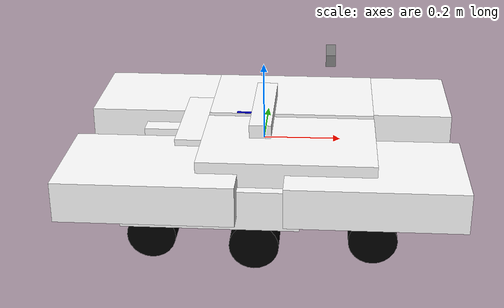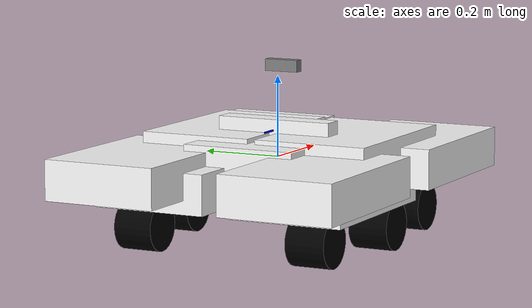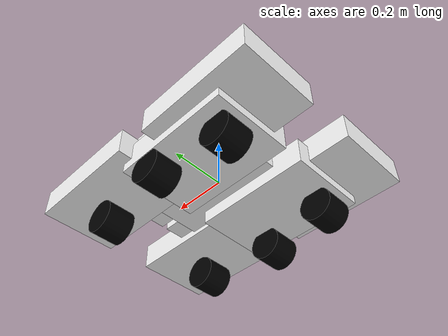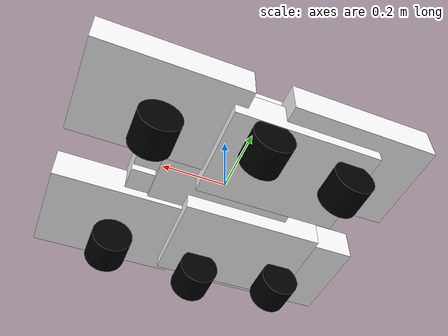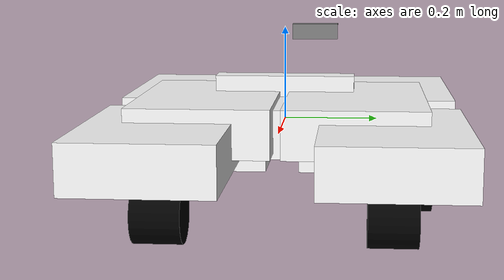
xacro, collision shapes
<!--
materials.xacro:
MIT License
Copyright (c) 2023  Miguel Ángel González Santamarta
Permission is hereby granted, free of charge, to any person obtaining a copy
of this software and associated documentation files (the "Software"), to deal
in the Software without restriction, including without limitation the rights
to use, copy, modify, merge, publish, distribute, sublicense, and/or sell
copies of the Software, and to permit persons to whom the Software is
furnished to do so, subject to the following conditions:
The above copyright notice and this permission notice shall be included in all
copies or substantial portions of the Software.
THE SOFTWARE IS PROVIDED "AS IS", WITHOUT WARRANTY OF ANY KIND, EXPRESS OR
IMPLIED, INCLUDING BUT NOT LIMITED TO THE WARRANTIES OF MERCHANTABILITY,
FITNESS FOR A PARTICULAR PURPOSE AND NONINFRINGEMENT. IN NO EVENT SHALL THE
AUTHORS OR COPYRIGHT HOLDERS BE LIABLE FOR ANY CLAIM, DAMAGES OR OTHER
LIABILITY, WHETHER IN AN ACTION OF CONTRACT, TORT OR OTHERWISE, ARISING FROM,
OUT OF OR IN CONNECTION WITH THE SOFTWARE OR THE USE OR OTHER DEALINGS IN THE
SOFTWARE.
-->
<?xml version="1.0" ?>
<robot name="rover"
    xmlns:xacro="http://www.ros.org/wiki/xacro">
    <!-- Include macros -->
    <xacro:include filename="$(find rover_description)/urdf/materials.xacro"/>
    <xacro:include filename="$(find rover_description)/urdf/inertials.xacro"/>
    <xacro:include filename="$(find rover_description)/urdf/bases/body.urdf.xacro" />
    <xacro:include filename="$(find rover_description)/urdf/bases/differential.urdf.xacro" />
    <xacro:include filename="$(find rover_description)/urdf/bases/turnbuckle.urdf.xacro" />
    <xacro:include filename="$(find rover_description)/urdf/bases/rocker.urdf.xacro" />
    <xacro:include filename="$(find rover_description)/urdf/bases/bogie.urdf.xacro" />
    <xacro:include filename="$(find rover_description)/urdf/wheels/wheel.urdf.xacro" />
    <xacro:include filename="$(find rover_description)/urdf/wheels/corner.urdf.xacro" />
    <xacro:include filename="$(find rover_description)/urdf/sensors/all_sensors.urdf.xacro" />
    <!-- Gazebo ROS2 Control -->
    <gazebo>
        <plugin filename="libgazebo_ros2_control.so" name="gazebo_ros2_control">
            <parameters>$(find rover_description)/config/control.yaml</parameters>
        </plugin>
    </gazebo>
    <!-- Ground Truth Odometry Publisher (absolute world coordinates) -->
    <gazebo>
        <plugin name="p3d_base_controller" filename="libgazebo_ros_p3d.so">
            <ros>
                <namespace>/</namespace>
                <remapping>odom:=odom_ground_truth_absolute</remapping>
            </ros>
            <update_rate>50.0</update_rate>
            <body_name>base_link</body_name>
            <frame_name>world</frame_name>
            <gaussian_noise>0.0</gaussian_noise>
        </plugin>
    </gazebo>
    <!-- Joint State Publisher for passive joints -->
    <gazebo>
        <plugin name="rover_joint_state" filename="libgazebo_ros_joint_state_publisher.so">
            <update_rate>30</update_rate>
            <joint_name>left_rocker_joint</joint_name>
            <joint_name>right_rocker_joint</joint_name>
            <joint_name>left_bogie_joint</joint_name>
            <joint_name>right_bogie_joint</joint_name>
            <joint_name>diff_brace_joint</joint_name>
            <joint_name>back_left_turnbuckle_joint</joint_name>
            <joint_name>back_right_turnbuckle_joint</joint_name>
            <joint_name>front_left_turnbuckle_joint</joint_name>
            <joint_name>front_right_turnbuckle_joint</joint_name>
            <joint_name>front_left_corner_joint</joint_name>
            <joint_name>front_right_corner_joint</joint_name>
            <joint_name>back_left_corner_joint</joint_name>
            <joint_name>back_right_corner_joint</joint_name>
        </plugin>
    </gazebo>
    <ros2_control name="GazeboSystem" type="system">
        <hardware>
            <plugin>gazebo_ros2_control/GazeboSystem</plugin>
        </hardware>
        <joint name="front_right_corner_joint">
            <command_interface name="position">
                <param name="min">-3.14159</param>
                <param name="max">3.14159</param>
            </command_interface>
            <state_interface name="position">
                <param name="initial_value">0.0</param>
            </state_interface>
            <state_interface name="velocity"/>
            <state_interface name="effort"/>
        </joint>
        <joint name="front_left_corner_joint">
            <command_interface name="position">
                <param name="min">-3.14159</param>
                <param name="max">3.14159</param>
            </command_interface>
            <state_interface name="position">
                <param name="initial_value">0.0</param>
            </state_interface>
            <state_interface name="velocity"/>
            <state_interface name="effort"/>
        </joint>
        <joint name="back_right_corner_joint">
            <command_interface name="position">
                <param name="min">-3.14159</param>
                <param name="max">3.14159</param>
            </command_interface>
            <state_interface name="position">
                <param name="initial_value">0.0</param>
            </state_interface>
            <state_interface name="velocity"/>
            <state_interface name="effort"/>
        </joint>
        <joint name="back_left_corner_joint">
            <command_interface name="position">
                <param name="min">-3.14159</param>
                <param name="max">3.14159</param>
            </command_interface>
            <state_interface name="position">
                <param name="initial_value">0.0</param>
            </state_interface>
            <state_interface name="velocity"/>
            <state_interface name="effort"/>
        </joint>
        <joint name="front_right_wheel_joint">
            <command_interface name="velocity">
                <param name="min">-10</param>
                <param name="max">10</param>
            </command_interface>
            <state_interface name="position"/>
            <state_interface name="velocity"/>
            <state_interface name="effort"/>
        </joint>
        <joint name="front_left_wheel_joint">
            <command_interface name="velocity">
                <param name="min">-10</param>
                <param name="max">10</param>
            </command_interface>
            <state_interface name="position"/>
            <state_interface name="velocity"/>
            <state_interface name="effort"/>
        </joint>
        <joint name="mid_right_wheel_joint">
            <command_interface name="velocity">
                <param name="min">-10</param>
                <param name="max">10</param>
            </command_interface>
            <state_interface name="position"/>
            <state_interface name="velocity"/>
            <state_interface name="effort"/>
        </joint>
        <joint name="mid_left_wheel_joint">
            <command_interface name="velocity">
                <param name="min">-10</param>
                <param name="max">10</param>
            </command_interface>
            <state_interface name="position"/>
            <state_interface name="velocity"/>
            <state_interface name="effort"/>
        </joint>
        <joint name="back_right_wheel_joint">
            <command_interface name="velocity">
                <param name="min">-10</param>
                <param name="max">10</param>
            </command_interface>
            <state_interface name="position"/>
            <state_interface name="velocity"/>
            <state_interface name="effort"/>
        </joint>
        <joint name="back_left_wheel_joint">
            <command_interface name="velocity">
                <param name="min">-10</param>
                <param name="max">10</param>
            </command_interface>
            <state_interface name="position"/>
            <state_interface name="velocity"/>
            <state_interface name="effort"/>
        </joint>
    </ros2_control>
    <!-- The base link -->
    <link name="base_link">
        <visual>
            <origin rpy="0 0 0" xyz="0 0 0" />
            <geometry>
                <box size="0.01 0.01 0.01"/>
            </geometry>
            <material name="orange" />
        </visual>
    </link>
    <gazebo reference="base_link">
        <material>Gazebo/Orange</material>
    </gazebo>
    <!-- body -->
    <xacro:body parent="base_link" />
    <xacro:differential parent="base_link" />
    <xacro:turnbuckle lat_label="left" reflect="1"/>
    <xacro:turnbuckle lat_label="right" reflect="-1"/>
    <xacro:rocker parent="base_link" lat_label="left" reflect="1"/>
    <xacro:rocker parent="base_link" lat_label="right" reflect="-1"/>
    <xacro:bogie lat_label="left" reflect="1"/>
    <xacro:bogie lat_label="right" reflect="-1"/>
    <!-- sensors -->

    <!-- Slamtec RPLIDAR C1: full 360 deg scan, 0.05-12 m -->
    <xacro:sensor_rplidar_c1 prefix="laser" parent="base_link">
        <origin xyz="0.17 -0.047 0.033" rpy="0 0 3.14159265"/>
    </xacro:sensor_rplidar_c1>

    <!-- Adafruit BNO085 9-DOF IMU -->
    <xacro:sensor_bno085 prefix="imu" parent="base_link">
        <origin xyz="-0.17 0 0" rpy="0 0 -1.5708"/>
    </xacro:sensor_bno085>

    <!-- Orbbec Gemini 335 RGB-D camera -->
    <xacro:sensor_gemini_335 prefix="camera" parent="base_link">
        <origin xyz="0.17 0.047 0.205" rpy="0 0 0"/>
    </xacro:sensor_gemini_335>
    <!-- wheels -->
    <xacro:corner_link lon_label="front" lat_label="left" reflect="1"/>
    <xacro:corner_link lon_label="front" lat_label="right" reflect="-1"/>
    <xacro:front_corner_joint lat_label="left" reflect="1"/>
    <xacro:front_corner_joint lat_label="right" reflect="-1"/>
    <xacro:corner_link lon_label="back" lat_label="left" reflect="1"/>
    <xacro:corner_link lon_label="back" lat_label="right" reflect="-1"/>
    <xacro:back_corner_joint lat_label="left" reflect="1"/>
    <xacro:back_corner_joint lat_label="right" reflect="-1"/>
    <xacro:wheel_link lon_label="front" lat_label="left" reflect="1"/>
    <xacro:wheel_link lon_label="front" lat_label="right" reflect="-1"/>
    <xacro:corner_wheel_joint lon_label="front" lat_label="left" reflect="1"/>
    <xacro:corner_wheel_joint lon_label="front" lat_label="right" reflect="-1"/>
    <xacro:wheel_link lon_label="mid" lat_label="left" reflect="1"/>
    <xacro:wheel_link lon_label="mid" lat_label="right" reflect="-1"/>
    <xacro:mid_wheel_joint lat_label="left" reflect="1"/>
    <xacro:mid_wheel_joint lat_label="right" reflect="-1"/>
    <xacro:wheel_link lon_label="back" lat_label="left" reflect="1"/>
    <xacro:wheel_link lon_label="back" lat_label="right" reflect="-1"/>
    <xacro:corner_wheel_joint lon_label="back" lat_label="left" reflect="1"/>
    <xacro:corner_wheel_joint lon_label="back" lat_label="right" reflect="-1"/>
</robot>

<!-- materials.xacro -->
<robot name="materials"
    xmlns:xacro="http://www.ros.org/wiki/xacro">
    <material name="red">
        <color rgba="0.8 0 0 1"/>
    </material>
    <material name="green">
        <color rgba="0 0.8 0 1"/>
    </material>
    <material name="blue">
        <color rgba="0 0 0.8 1"/>
    </material>
    <material name="orange">
        <color rgba="0.8 0.25 0 1"/>
    </material>
    <material name="black">
        <color rgba="0 0 0 1"/>
    </material>
    <material name="dark_gray">
        <color rgba="0.5 0.5 0.5 1"/>
    </material>
    <material name="gray">
        <color rgba="0.753 0.753 0.753 1"/>
    </material>
    <material name="silver">
        <color rgba="0.88 0.88 0.88 1"/>
    </material>
    <material name="white">
        <color rgba="1 1 1 1"/>
    </material>
</robot>

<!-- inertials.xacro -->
<robot name="inertials"
    xmlns:xacro="http://www.ros.org/wiki/xacro">
    <!-- Math constants -->
    <xacro:property name="math_pi" value="3.141592653589793" />
    <xacro:property name="math_pi_over_2" value="1.5707963267948966" />
    <xacro:property name="math_pi_over_4" value="0.785398163397448" />
    <!-- Inertial for solid cuboid with dimensions x y z  -->
    <xacro:macro name="solid_cuboid_inertial" params="rpy xyz mass x y z">
        <inertial>
            <origin rpy="${rpy}" xyz="${xyz}"/>
            <mass value="${mass}" />
            <inertia ixx="${mass * (y * y + z * z) / 12.0}" ixy="0.0" ixz="0.0" iyy="${mass * (x * x + z * z) / 12.0}" iyz="0.0" izz="${mass * (x * x + y * y) / 12.0}" />
        </inertial>
    </xacro:macro>
    <!-- Inertial for solid cylinder with radius and length aligned to z-axis  -->
    <xacro:macro name="solid_cylinder_inertial" params="rpy xyz mass radius length">
        <inertial>
            <origin rpy="${rpy}" xyz="${xyz}"/>
            <mass value="${mass}" />
            <inertia ixx="${mass * (3.0 * radius * radius + length * length) / 12.0}" ixy="0.0" ixz="0.0" iyy="${mass * (3.0 * radius * radius + length * length) / 12.0}" iyz="0.0" izz="${mass * (radius * radius) / 2.0}" />
        </inertial>
    </xacro:macro>
</robot>

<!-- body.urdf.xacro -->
<robot xmlns:xacro="http://www.ros.org/wiki/xacro">
    <xacro:property name="body_box_length" value="0.43" />
    <xacro:property name="body_box_width" value="0.29" />
    <xacro:property name="body_box_depth" value="0.10" />
    <xacro:property name="body_box_mass" value="1.0" />

    <xacro:include filename="$(find rover_description)/urdf/inertials.xacro"/>

    <xacro:macro name="body" params="parent">

        <link name="body_box_link">
            <visual>
                <origin rpy="0 0 0" xyz="0 0 0" />
                <geometry>
                    <mesh filename="package://rover_description/meshes/bases/body_box.stl" />
                </geometry>
                <material name="white" />
            </visual>
            <collision>
                <origin rpy="0 0 0" xyz="0 0 0" />
                <geometry>
                    <box size="${body_box_length} ${body_box_width} ${body_box_depth}"/>
                </geometry>
            </collision>
            <xacro:solid_cuboid_inertial rpy="0 0 0" xyz="0 0 0" mass="${body_box_mass}" x="${body_box_length}" y="${body_box_width}" z="${body_box_depth}" />
        </link>

        <gazebo reference="body_box_link">
            <material>Gazebo/White</material>
        </gazebo>

        <joint name="body_box_joint" type="fixed">
            <origin rpy="0 0 0" xyz="0 0 0"/>
            <parent link="${parent}" />
            <child link="body_box_link" />
        </joint>

    </xacro:macro>
</robot>

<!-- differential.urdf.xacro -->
<robot xmlns:xacro="http://www.ros.org/wiki/xacro">
    <xacro:property name="differential_box_length" value="0.300" />
    <xacro:property name="differential_box_width" value="0.055" />
    <xacro:property name="differential_box_depth" value="0.055" />
    <xacro:property name="differential_box_mass" value="0.1" />

    <xacro:include filename="$(find rover_description)/urdf/inertials.xacro"/>

    <xacro:macro name="differential" params="parent">

        <link name="diff_brace_link">
            <visual>
                <origin rpy="0 0 0" xyz="0 0 0" />
                <geometry>
                    <mesh filename="package://rover_description/meshes/bases/differential.stl" />
                </geometry>
                <material name="white" />
            </visual>
            <collision>
                <origin rpy="0 0 ${math_pi_over_2}" xyz="0 0 0" />
                <geometry>
                    <box size="${differential_box_length} ${differential_box_width} ${differential_box_depth}"/>
                </geometry>
            </collision>
            <xacro:solid_cuboid_inertial rpy="0 0 ${math_pi_over_2}" xyz="0 0 0" mass="${differential_box_mass}" x="${differential_box_length}" y="${differential_box_width}" z="${differential_box_depth}" />
        </link>

        <gazebo reference="diff_brace_link">
            <material>Gazebo/White</material>
        </gazebo>

        <joint name="diff_brace_joint" type="revolute">
            <origin rpy="0 0 0" xyz="0 0 0.0681"/>
            <axis xyz="0 0 1" />
            <limit lower="${-math_pi_over_4}" upper="${math_pi_over_4}" effort="100.0" velocity="30.0" />
            <parent link="${parent}" />
            <child link="diff_brace_link" />
        </joint>
    </xacro:macro>
</robot>

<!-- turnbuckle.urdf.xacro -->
<robot xmlns:xacro="http://www.ros.org/wiki/xacro">

    <xacro:include filename="$(find rover_description)/urdf/inertials.xacro"/>

    <xacro:macro name="turnbuckle" params="lat_label reflect">
        <link name="${lat_label}_turnbuckle_link">
            <origin xyz="0.035 ${reflect * 0.17} 0.07" rpy="0 0 0"/>
            <visual>
                <origin rpy="0 0 0" xyz="0 0 0" />
                <geometry>
                    <mesh filename="package://rover_description/meshes/bases/turnbuckle.stl" />
                </geometry>
                <material name="blue" />
            </visual>
            <collision>
                <origin xyz="0 0 0" rpy="0 ${math_pi_over_2} 0"/>
                <geometry>
                    <cylinder length="0.07" radius="0.0025"/>
                </geometry>
            </collision>
            <xacro:solid_cylinder_inertial rpy="0 0 0" xyz="0 0 0" mass="0.25" radius="0.0025" length="0.07" />
        </link>

        <joint name="back_${lat_label}_turnbuckle_joint" type="revolute">
            <origin xyz="-0.035 0 0" rpy="0 0 0"/>
            <limit lower="${-math_pi}" upper="${math_pi}" effort="100.0" velocity="30.0" />
            <parent link="diff_brace_link" />
            <child link="${lat_label}_turnbuckle_link" />
        </joint>

    </xacro:macro>
</robot>

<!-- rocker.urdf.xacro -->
<robot xmlns:xacro="http://www.ros.org/wiki/xacro">
    <xacro:property name="rocker_box_length" value="0.43" />
    <xacro:property name="rocker_box_width" value="0.29" />
    <xacro:property name="rocker_box_depth" value="0.10" />
    <xacro:property name="rocker_box_mass" value="0.25" />

    <xacro:include filename="$(find rover_description)/urdf/inertials.xacro"/>

    <xacro:macro name="rocker" params="parent lat_label reflect">

        <!-- link -->
        <link name="${lat_label}_rocker_link">
            <visual>
                <origin rpy="0 0 0" xyz="0 0 0" />
                <geometry>
                    <mesh filename="package://rover_description/meshes/bases/${lat_label}_rocker_asm.stl" />
                </geometry>
                <material name="white" />
            </visual>
            <collision>
                <origin rpy="0 0 0" xyz="0 0 0" />
                <geometry>
                    <box size="${rocker_box_length} ${rocker_box_width} ${rocker_box_depth}"/>
                </geometry>
            </collision>
            <xacro:solid_cuboid_inertial rpy="0 0 0" xyz="0 0 0" mass="${rocker_box_mass}" x="${rocker_box_length}" y="${rocker_box_width}" z="${rocker_box_depth}" />
        </link>

        <gazebo reference="${lat_label}_rocker_link">
            <material>Gazebo/White</material>
        </gazebo>

        <!-- joint -->
        <joint name="${lat_label}_rocker_joint" type="fixed">            <!-- continuous -->
            <origin rpy="0 0 0" xyz="0.071 ${reflect * 0.155} 0.0118"/>
            <axis xyz="0 1 0" />
            <limit lower="${-math_pi_over_4}" upper="${math_pi_over_4}" effort="100.0" velocity="30.0" />
            <parent link="${parent}" />
            <child link="${lat_label}_rocker_link" />
        </joint>

        <gazebo reference="${lat_label}_rocker_joint">
            <provideFeedback>true</provideFeedback>
            <implicitSpringDamper>true</implicitSpringDamper>
        </gazebo>
    </xacro:macro>
</robot>

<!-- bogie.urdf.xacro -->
<robot xmlns:xacro="http://www.ros.org/wiki/xacro">
    <xacro:property name="bogie_box_length" value="0.43" />
    <xacro:property name="bogie_box_width" value="0.29" />
    <xacro:property name="bogie_box_depth" value="0.10" />
    <xacro:property name="bogie_box_mass" value="0.25" />

    <xacro:include filename="$(find rover_description)/urdf/inertials.xacro"/>

    <xacro:macro name="bogie" params="lat_label reflect">

        <!-- link -->
        <link name="${lat_label}_bogie_link">
            <visual>
                <origin rpy="0 0 0" xyz="0 0 0" />
                <geometry>
                    <mesh filename="package://rover_description/meshes/bases/${lat_label}_bogie_asm.stl" />
                </geometry>
                <material name="white" />
            </visual>
            <collision>
                <origin rpy="0 0 0" xyz="0 0 0" />
                <geometry>
                    <box size="${bogie_box_length} ${bogie_box_width} ${bogie_box_depth}"/>
                </geometry>
            </collision>
            <xacro:solid_cuboid_inertial rpy="0 0 0" xyz="0 0 0" mass="${bogie_box_mass}" x="${bogie_box_length}" y="${bogie_box_width}" z="${bogie_box_depth}" />
        </link>

        <gazebo reference="${lat_label}_bogie_link">
            <material>Gazebo/White</material>
        </gazebo>

        <!-- joint -->
        <joint name="${lat_label}_bogie_joint" type="revolute">
            <origin rpy="0 0 0" xyz="-0.181 ${reflect * 0.025} -0.062"/>
            <axis xyz="0 1 0" />
            <limit lower="${-math_pi_over_4}" upper="${math_pi_over_4}" effort="100.0" velocity="30.0" />
            <parent link="${lat_label}_rocker_link" />
            <child link="${lat_label}_bogie_link" />
        </joint>
    </xacro:macro>
</robot>

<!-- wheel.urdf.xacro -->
<robot xmlns:xacro="http://www.ros.org/wiki/xacro">
    <xacro:property name="wheel_width" value="0.100" />
    <xacro:property name="wheel_radius" value="0.060" />
    <xacro:property name="wheel_mass" value="0.25" />
    <xacro:include filename="$(find rover_description)/urdf/inertials.xacro"/>
    <!-- link -->
    <xacro:macro name="wheel_link" params="lon_label lat_label reflect">
        <link name="${lon_label}_${lat_label}_wheel_link">
            <visual>
                <origin rpy="${reflect * math_pi_over_2} 0 0" xyz="0 0 0" />
                <geometry>
                    <mesh filename="package://rover_description/meshes/wheels/wheel_asm.stl" />
                </geometry>
                <material name="black" />
            </visual>
            <collision>
                <origin rpy="${reflect * math_pi_over_2} 0 0" xyz="0 0 0" />
                <geometry>
                    <cylinder length="${wheel_width}" radius="${wheel_radius}" />
                </geometry>
            </collision>
            <xacro:solid_cylinder_inertial rpy="0 0 0" xyz="0 0 0" mass="${wheel_mass}" radius="${wheel_radius}" length="${wheel_width}" />
        </link>

        <gazebo reference="${lon_label}_${lat_label}_wheel_link">
            <material>Gazebo/DarkGray</material>
            <mu1 value="100.0"/>
            <mu2 value="100.0"/>
            <kp value="10000000.0" />
            <kd value="1.0" />
            <fdir1 value="1 0 0"/>
            <turnGravityOff>false</turnGravityOff>
        </gazebo>
    </xacro:macro>
    <!-- corner wheel joint -->
    <xacro:macro name="corner_wheel_joint" params="lon_label lat_label reflect">
        <joint name="${lon_label}_${lat_label}_wheel_joint" type="continuous">
            <origin rpy="0 0 0" xyz="0 0 -0.132"/>
            <axis xyz="0 1 0" />
            <parent link="${lon_label}_${lat_label}_corner_link" />
            <child link="${lon_label}_${lat_label}_wheel_link" />
            <limit effort="1000.0" lower="-3.14159" upper="3.14159" velocity="30"/>
            <dynamics damping="0.0" friction="0.0"/>
        </joint>
        <gazebo reference="${lon_label}_${lat_label}_wheel_joint">
            <physics>
                <provide_feedback>true</provide_feedback>
            </physics>
        </gazebo>
    </xacro:macro>
    <!-- mid wheel joint -->
    <xacro:macro name="mid_wheel_joint" params="lat_label reflect">
        <joint name="mid_${lat_label}_wheel_joint" type="continuous">
            <origin rpy="0 0 0" xyz="0.1063 ${reflect * 0.0929} -0.0959"/>
            <axis xyz="0 1 0" />
            <parent link="${lat_label}_bogie_link" />
            <child link="mid_${lat_label}_wheel_link" />
            <limit effort="1000.0" lower="-3.14159" upper="3.14159" velocity="30"/>
            <dynamics damping="0.0" friction="0.0"/>
        </joint>
        <gazebo reference="mid_${lat_label}_wheel_joint">
            <physics>
                <provide_feedback>true</provide_feedback>
            </physics>
        </gazebo>
    </xacro:macro>
</robot>

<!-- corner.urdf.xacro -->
<robot xmlns:xacro="http://www.ros.org/wiki/xacro">
    <xacro:property name="corner_box_length" value="0.43" />
    <xacro:property name="corner_box_width" value="0.29" />
    <xacro:property name="corner_box_depth" value="0.10" />
    <xacro:property name="corner_box_mass" value="0.25" />
    <xacro:include filename="$(find rover_description)/urdf/inertials.xacro"/>
    <!-- link -->
    <xacro:macro name="corner_link" params="lon_label lat_label reflect">
        <link name="${lon_label}_${lat_label}_corner_link">
            <visual>
                <origin rpy="0 0 0" xyz="0 0 0" />
                <geometry>
                    <mesh filename="package://rover_description/meshes/bases/${lon_label}_${lat_label}_steering_asm.stl" />
                </geometry>
                <material name="white" />
            </visual>
            <collision>
                <origin rpy="0 0 0" xyz="0 0 0" />
                <geometry>
                    <box size="${corner_box_length} ${corner_box_width} ${corner_box_depth}"/>
                </geometry>
            </collision>
            <xacro:solid_cuboid_inertial rpy="0 0 0" xyz="0 0 0" mass="${corner_box_mass}" x="${corner_box_length}" y="${corner_box_width}" z="${corner_box_depth}" />
        </link>
        <gazebo reference="${lon_label}_${lat_label}_corner_link">
            <material>Gazebo/White</material>
        </gazebo>
    </xacro:macro>
    <!-- front joint -->
    <xacro:macro name="front_corner_joint" params="lat_label reflect">
        <joint name="front_${lat_label}_corner_joint" type="continuous">
            <origin rpy="0 0 0" xyz="0.2116 ${reflect * 0.075} -0.0279"/>
            <axis xyz="0 0 1" />
            <parent link="${lat_label}_rocker_link" />
            <child link="front_${lat_label}_corner_link" />
            <limit effort="1000.0" lower="-3.14159" upper="3.14159" velocity="30"/>
            <dynamics damping="0.0" friction="0.0"/>
        </joint>
        <gazebo reference="front_${lat_label}_corner_joint">
            <physics>
                <provide_feedback>true</provide_feedback>
            </physics>
        </gazebo>
    </xacro:macro>
    <!-- back joint -->
    <xacro:macro name="back_corner_joint" params="lat_label reflect">
        <joint name="back_${lat_label}_corner_joint" type="continuous">
            <origin rpy="0 0 0" xyz="-0.149 ${reflect * 0.05} 0.0338"/>
            <axis xyz="0 0 1" />
            <parent link="${lat_label}_bogie_link" />
            <child link="back_${lat_label}_corner_link" />
            <limit effort="1000.0" lower="-3.14159" upper="3.14159" velocity="30"/>
            <dynamics damping="0.0" friction="0.0"/>
        </joint>
        <gazebo reference="back_${lat_label}_corner_joint">
            <physics>
                <provide_feedback>true</provide_feedback>
            </physics>
        </gazebo>
    </xacro:macro>
</robot>

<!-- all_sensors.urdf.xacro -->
<robot name="all_sensors" xmlns:xacro="http://www.ros.org/wiki/xacro">
  <!-- IMU: Adafruit BNO085 9-DOF -->
  <xacro:include filename="$(find rover_description)/urdf/sensors/bno085.urdf.xacro" />
  <!-- 2D lidar: Slamtec RPLIDAR C1 -->
  <xacro:include filename="$(find rover_description)/urdf/sensors/rplidar_c1.urdf.xacro" />
  <!-- RGB-D camera: Orbbec Gemini 335 -->
  <xacro:include filename="$(find rover_description)/urdf/sensors/gemini_335.urdf.xacro" />
</robot>

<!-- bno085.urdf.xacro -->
<robot name="sensor_bno085" xmlns:xacro="http://www.ros.org/wiki/xacro">

  <xacro:macro name="sensor_bno085" params="prefix parent *origin update_rate:=100">

    <joint name="${prefix}_joint" type="fixed">
      <axis xyz="1 0 0" />
      <xacro:insert_block name="origin" />
      <parent link="${parent}" />
      <child link="${prefix}_link" />
    </joint>

    <link name="${prefix}_link">
      <inertial>
        <mass value="0.003" />
        <origin rpy="0 0 0" xyz="0 0 0" />
        <inertia ixx="8e-8" ixy="0" ixz="0" iyy="1.6e-7" iyz="0" izz="2.4e-7" />
      </inertial>
      <visual>
        <origin rpy="0 0 0" xyz="0 0 0" />
        <geometry>
          <box size="0.0254 0.0178 0.003" />
        </geometry>
        <material name="blue" />
      </visual>
      <collision>
        <origin rpy="0 0 0" xyz="0 0 0" />
        <geometry>
          <box size="0.0254 0.0178 0.003" />
        </geometry>
      </collision>
    </link>

    <gazebo reference="${prefix}_link">
      <material>Gazebo/Blue</material>
    </gazebo>

    <gazebo reference="${prefix}_link">
      <sensor name="bno085" type="imu">
        <plugin filename="libgazebo_ros_imu_sensor.so" name="${prefix}_controller">
          <ros>
            <remapping>~/out:=imu</remapping>
            <qos>
              <topic name="imu">
                <publisher>
                  <reliability>best_effort</reliability>
                </publisher>
              </topic>
            </qos>
          </ros>
          <initial_orientation_as_reference>false</initial_orientation_as_reference>
          <frame_name>${prefix}_link</frame_name>
        </plugin>
        <always_on>true</always_on>
        <update_rate>${update_rate}</update_rate>
        <visualize>true</visualize>
        <imu>
          <angular_velocity>
            <x>
              <noise type="gaussian">
                <mean>0.0</mean>
                <stddev>2.4e-3</stddev>
                <bias_mean>0.0000075</bias_mean>
                <bias_stddev>0.0000008</bias_stddev>
              </noise>
            </x>
            <y>
              <noise type="gaussian">
                <mean>0.0</mean>
                <stddev>2.4e-3</stddev>
                <bias_mean>0.0000075</bias_mean>
                <bias_stddev>0.0000008</bias_stddev>
              </noise>
            </y>
            <z>
              <noise type="gaussian">
                <mean>0.0</mean>
                <stddev>2.4e-3</stddev>
                <bias_mean>0.0000075</bias_mean>
                <bias_stddev>0.0000008</bias_stddev>
              </noise>
            </z>
          </angular_velocity>
          <linear_acceleration>
            <x>
              <noise type="gaussian">
                <mean>0.0</mean>
                <stddev>1.9e-2</stddev>
                <bias_mean>0.1</bias_mean>
                <bias_stddev>0.001</bias_stddev>
              </noise>
            </x>
            <y>
              <noise type="gaussian">
                <mean>0.0</mean>
                <stddev>1.9e-2</stddev>
                <bias_mean>0.1</bias_mean>
                <bias_stddev>0.001</bias_stddev>
              </noise>
            </y>
            <z>
              <noise type="gaussian">
                <mean>0.0</mean>
                <stddev>1.9e-2</stddev>
                <bias_mean>0.1</bias_mean>
                <bias_stddev>0.001</bias_stddev>
              </noise>
            </z>
          </linear_acceleration>
        </imu>
      </sensor>
    </gazebo>

  </xacro:macro>

</robot>

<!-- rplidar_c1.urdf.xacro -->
<!-- Slamtec RPLIDAR C1 (360 deg DTOF, 0.05-12 m, 10 Hz, 5000 samples/s)
     Gazebo Classic version: the scan is published by libgazebo_ros_ray_sensor. -->
<robot name="sensor_rplidar_c1" xmlns:xacro="http://www.ros.org/wiki/xacro">
  <xacro:macro name="sensor_rplidar_c1" params="prefix parent *origin
                                                min_angle:=${-pi} max_angle:=${pi}
                                                samples:=500 update_rate:=10
                                                min_range:=0.05 max_range:=12.0">

    <xacro:property name="rplidar_radius" value="0.0278" />
    <xacro:property name="rplidar_height" value="0.0413" />
    <xacro:property name="rplidar_visual_z" value="-0.0074" />

    <joint name="${prefix}_joint" type="fixed">
      <xacro:insert_block name="origin" />
      <parent link="${parent}" />
      <child link="${prefix}_link" />
    </joint>

    <link name="${prefix}_link">
      <visual>
        <origin xyz="0 0 ${rplidar_visual_z}" rpy="0 0 0" />
        <geometry>
          <cylinder radius="${rplidar_radius}" length="${rplidar_height}" />
        </geometry>
        <material name="dark_gray" />
      </visual>
      <collision>
        <origin xyz="0 0 ${rplidar_visual_z}" rpy="0 0 0" />
        <geometry>
          <cylinder radius="${rplidar_radius}" length="${rplidar_height}" />
        </geometry>
      </collision>
      <inertial>
        <mass value="0.11" />
        <origin xyz="0 0 ${rplidar_visual_z}" rpy="0 0 0" />
        <inertia ixx="2.1e-5" ixy="0" ixz="0" iyy="2.1e-5" iyz="0" izz="4.2e-5" />
      </inertial>
    </link>

    <gazebo reference="${prefix}_link">
      <material>Gazebo/DarkGrey</material>
    </gazebo>

    <gazebo reference="${prefix}_link">
      <sensor name="rplidar_c1" type="gpu_ray">
        <pose>0 0 0 0 0 0</pose>
        <always_on>true</always_on>
        <visualize>true</visualize>
        <update_rate>${update_rate}</update_rate>
        <ray>
          <scan>
            <horizontal>
              <!-- 5000 samples/s at 10 Hz => 500 samples/turn (0.72 deg) -->
              <samples>${samples}</samples>
              <resolution>1</resolution>
              <min_angle>${min_angle}</min_angle>
              <max_angle>${max_angle}</max_angle>
            </horizontal>
          </scan>
          <range>
            <min>${min_range}</min>
            <max>${max_range}</max>
            <!-- Datasheet accuracy: +-30 mm -->
            <resolution>0.03</resolution>
          </range>
          <noise>
            <type>gaussian</type>
            <mean>0.0</mean>
            <stddev>0.01</stddev>
          </noise>
        </ray>
        <plugin name="${prefix}_controller" filename="libgazebo_ros_ray_sensor.so">
          <ros>
            <remapping>~/out:=scan</remapping>
            <qos>
              <topic name="scan">
                <publisher>
                  <reliability>best_effort</reliability>
                </publisher>
              </topic>
            </qos>
          </ros>
          <output_type>sensor_msgs/LaserScan</output_type>
          <frame_name>${prefix}_link</frame_name>
        </plugin>
      </sensor>
    </gazebo>
  </xacro:macro>
</robot>

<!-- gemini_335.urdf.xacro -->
<robot name="sensor_gemini_335" xmlns:xacro="http://www.ros.org/wiki/xacro">
  <xacro:macro name="sensor_gemini_335" params="prefix parent *origin
                                                width:=848 height:=480 fps:=30
                                                hfov:=1.50098 near:=0.1 far:=20.0">

    <xacro:property name="half_pi" value="1.5707963267948966" />
    <!-- Left IR to RGB offset along the module (RGB sits to the right) -->
    <xacro:property name="color_offset_y" value="-0.025" />

    <joint name="${prefix}_joint" type="fixed">
      <xacro:insert_block name="origin" />
      <parent link="${parent}" />
      <child link="${prefix}_link" />
    </joint>

    <link name="${prefix}_link">
      <visual>
        <origin xyz="0 ${-color_offset_y} 0" rpy="0 0 0" />
        <geometry>
          <box size="0.025 0.090 0.030" />
        </geometry>
        <material name="dark_gray" />
      </visual>
      <collision>
        <origin xyz="0 ${-color_offset_y} 0" rpy="0 0 0" />
        <geometry>
          <box size="0.025 0.090 0.030" />
        </geometry>
      </collision>
      <inertial>
        <mass value="0.055" />
        <origin xyz="0 ${-color_offset_y} 0" rpy="0 0 0" />
        <inertia ixx="4.2e-5" ixy="0" ixz="0" iyy="6.3e-6" iyz="0" izz="3.8e-5" />
      </inertial>
    </link>

    <gazebo reference="${prefix}_link">
      <material>Gazebo/DarkGrey</material>
    </gazebo>

    <!-- Depth sensor frames -->
    <joint name="${prefix}_depth_joint" type="fixed">
      <origin xyz="0 0 0" rpy="0 0 0" />
      <parent link="${prefix}_link" />
      <child link="${prefix}_depth_frame" />
    </joint>
    <link name="${prefix}_depth_frame">
      <inertial>
        <mass value="0.001" />
        <origin xyz="0 0 0" />
        <inertia ixx="1e-6" ixy="0" ixz="0" iyy="1e-6" iyz="0" izz="1e-6" />
      </inertial>
    </link>

    <joint name="${prefix}_depth_optical_joint" type="fixed">
      <origin xyz="0 0 0" rpy="${-half_pi} 0 ${-half_pi}" />
      <parent link="${prefix}_depth_frame" />
      <child link="${prefix}_depth_optical_frame" />
    </joint>
    <link name="${prefix}_depth_optical_frame">
      <inertial>
        <mass value="0.001" />
        <origin xyz="0 0 0" />
        <inertia ixx="1e-6" ixy="0" ixz="0" iyy="1e-6" iyz="0" izz="1e-6" />
      </inertial>
    </link>

    <!-- Color sensor frames -->
    <joint name="${prefix}_color_joint" type="fixed">
      <origin xyz="0 ${color_offset_y} 0" rpy="0 0 0" />
      <parent link="${prefix}_link" />
      <child link="${prefix}_color_frame" />
    </joint>
    <link name="${prefix}_color_frame">
      <inertial>
        <mass value="0.001" />
        <origin xyz="0 0 0" />
        <inertia ixx="1e-6" ixy="0" ixz="0" iyy="1e-6" iyz="0" izz="1e-6" />
      </inertial>
    </link>

    <joint name="${prefix}_color_optical_joint" type="fixed">
      <origin xyz="0 0 0" rpy="${-half_pi} 0 ${-half_pi}" />
      <parent link="${prefix}_color_frame" />
      <child link="${prefix}_color_optical_frame" />
    </joint>
    <link name="${prefix}_color_optical_frame">
      <inertial>
        <mass value="0.001" />
        <origin xyz="0 0 0" />
        <inertia ixx="1e-6" ixy="0" ixz="0" iyy="1e-6" iyz="0" izz="1e-6" />
      </inertial>
    </link>

    <!-- Gazebo publishes a single RGBD stream; it stands in for the real camera
         running with depth_registration:=true, i.e. depth already aligned to
         the color frame. -->
    <gazebo reference="${prefix}_link">
      <sensor name="gemini_335" type="depth">
        <pose>0 ${color_offset_y} 0 0 0 0</pose>
        <always_on>true</always_on>
        <visualize>true</visualize>
        <update_rate>${fps}</update_rate>
        <camera>
          <!-- RGB FOV 86 deg horizontal; 848x480 gives ~55 deg vertical -->
          <horizontal_fov>${hfov}</horizontal_fov>
          <image>
            <format>B8G8R8</format>
            <width>${width}</width>
            <height>${height}</height>
          </image>
          <clip>
            <near>${near}</near>
            <far>${far}</far>
          </clip>
        </camera>
        <plugin name="${prefix}_controller" filename="libgazebo_ros_camera.so">
          <ros>
            <!-- Match the OrbbecSDK_ROS2 topic layout -->
            <remapping>~/image_raw:=/camera/color/image_raw</remapping>
            <remapping>~/camera_info:=/camera/color/camera_info</remapping>
            <remapping>~/depth/image_raw:=/camera/depth/image_raw</remapping>
            <remapping>~/depth/camera_info:=/camera/depth/camera_info</remapping>
            <remapping>~/points:=/camera/depth/points</remapping>
            <qos>
              <topic name="/camera/color/image_raw">
                <publisher>
                  <reliability>best_effort</reliability>
                </publisher>
              </topic>
              <topic name="/camera/color/camera_info">
                <publisher>
                  <reliability>best_effort</reliability>
                </publisher>
              </topic>
              <topic name="/camera/depth/image_raw">
                <publisher>
                  <reliability>best_effort</reliability>
                </publisher>
              </topic>
              <topic name="/camera/depth/camera_info">
                <publisher>
                  <reliability>best_effort</reliability>
                </publisher>
              </topic>
              <topic name="/camera/depth/points">
                <publisher>
                  <reliability>best_effort</reliability>
                </publisher>
              </topic>
            </qos>
          </ros>
          <frame_name>${prefix}_color_optical_frame</frame_name>
          <min_depth>${near}</min_depth>
          <max_depth>${far}</max_depth>
        </plugin>
      </sensor>
    </gazebo>
  </xacro:macro>
</robot>
